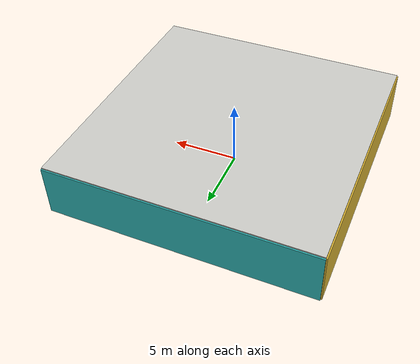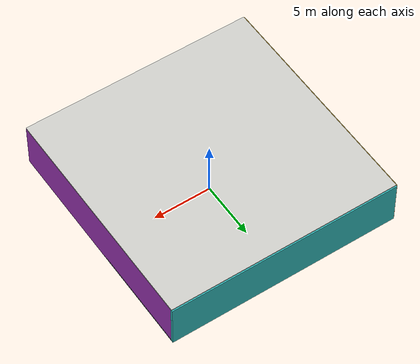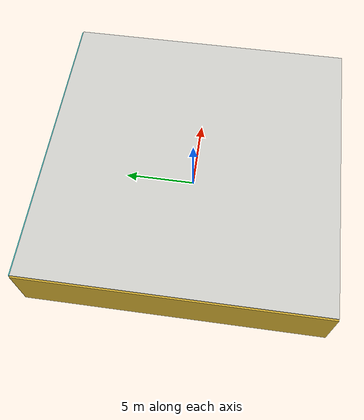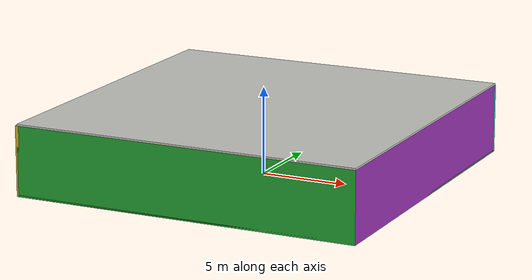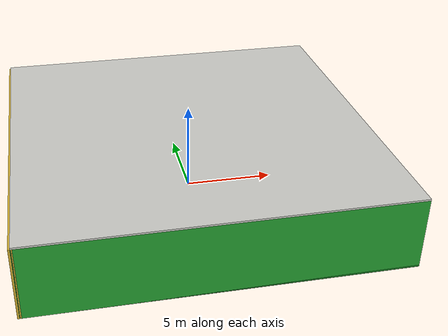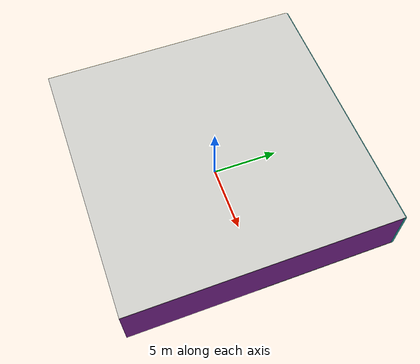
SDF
<sdf version="1.4">
 <world name="default">
  <physics type="ode">
   <max_step_size>0.001</max_step_size>
   <real_time_factor>1</real_time_factor>
   <real_time_update_rate>1000</real_time_update_rate>
   <gravity>0 0 -9.8</gravity>
  </physics>
  <scene><ambient>0.4 0.4 0.4 1</ambient><background>0.7 0.7 0.7 1</background><shadows>1</shadows></scene>
  <model name="Surrounding">
   <static>1</static>
   <link name="Ceiling">
    <collision name="Ceiling_Collision"><geometry><box><size>20 20 0.1</size></box></geometry></collision>
    <visual name="Ceiling_Visual">
     <geometry><box><size>20 20 0.1</size></box></geometry>
     <material>
      <script><uri>file://media/materials/scripts/gazebo.material</uri><name>Gazebo/CeilingTiled</name></script>
     </material>
    </visual>
    <pose>0 0 4.05 0 0 0</pose>
   </link>
   <link name="Wall_South">
    <collision name="Wall_South_Collision">
     <geometry><box><size>20 0 4</size></box></geometry>
     <pose>0 0 2 0 -0 0</pose>
    </collision>
    <visual name="Wall_South_Visual">
     <pose>0 0 2 0 -0 0</pose>
     <geometry><box><size>20 0 4</size></box></geometry>
     <material>
      <script><uri>file://media/materials/scripts/gazebo.material</uri><name>Gazebo/Green</name></script>
     </material>
    </visual>
    <velocity_decay><linear>0</linear><angular>0</angular></velocity_decay>
    <pose>0 -10 0 0 -0 0</pose>
   </link>
   <link name="Wall_East">
    <collision name="Wall_21_Collision">
     <geometry><box><size>20 0 4</size></box></geometry>
     <pose>0 0 2 0 -0 0</pose>
    </collision>
    <visual name="Wall_21_Visual">
     <pose>0 0 2 0 -0 0</pose>
     <geometry><box><size>20 0 4</size></box></geometry>
     <material>
      <script><uri>file://media/materials/scripts/gazebo.material</uri><name>Gazebo/PurpleGlow</name></script>
     </material>
    </visual>
    <velocity_decay><linear>0</linear><angular>0</angular></velocity_decay>
    <pose>10 0 0 0 -0 1.5708</pose>
   </link>
   <link name="Wall_North">
    <collision name="Wall_22_Collision">
     <geometry><box><size>20 0.2 4</size></box></geometry>
     <pose>0 0 2 0 -0 0</pose>
    </collision>
    <visual name="Wall_22_Visual">
     <pose>0 0 2 0 -0 0</pose>
     <geometry><box><size>20 0.2 4</size></box></geometry>
     <material>
      <script><uri>file://media/materials/scripts/gazebo.material</uri><name>Gazebo/Turquoise</name></script>
     </material>
    </visual>
    <velocity_decay><linear>0</linear><angular>0</angular></velocity_decay>
    <pose>0 10 0 0 -0 0</pose>
   </link>
   <link name="Wall_West">
    <collision name="Wall_23_Collision">
     <geometry><box><size>20 0.2 4</size></box></geometry>
     <pose>0 0 2 0 -0 0</pose>
    </collision>
    <visual name="Wall_23_Visual">
     <pose>0 0 2 0 -0 0</pose>
     <geometry><box><size>20 0.2 4</size></box></geometry>
     <material>
      <script><uri>file://media/materials/scripts/gazebo.material</uri><name>Gazebo/Gold</name></script>
     </material>
    </visual>
    <velocity_decay><linear>0</linear><angular>0</angular></velocity_decay>
    <pose>-10 0 0 0 0 -1.5708</pose>
   </link>
   <link name="Ground_link">
    <collision name="collision">
     <pose>0 0 .05 0 -0 0</pose>
     <geometry><box><size>20 20 0.1</size></box></geometry>
    </collision>
    <visual name="visual">
     <pose>0 0 .05 0 -0 0</pose>
     <geometry><box><size>20 20 0.1</size></box></geometry>
     <material>
      <script><uri>file://media/materials/scripts/gazebo.material</uri><name>Gazebo/GreenTransparent</name></script>
     </material>
    </visual>
   </link>
   <static>1</static>
  </model>
  <spherical_coordinates>
   <surface_model>EARTH_WGS84</surface_model>
   <latitude_deg>0</latitude_deg>
   <longitude_deg>0</longitude_deg>
   <elevation>0</elevation>
   <heading_deg>0</heading_deg>
  </spherical_coordinates>
  <light name="lightball_0" type="diffuse">
   <diffuse>0.8 0.8 0.8 1</diffuse>
   <specular>0.2 0.2 0.2 1</specular>
   <attenuation>
    <range>100</range>
    <constant>0.7</constant>
    <linear>0.01</linear>
    <quadratic>0.001</quadratic>
   </attenuation>
   <direction>-0.5 0.1 -0.9</direction>
   <pose>-7.92245155324 -6.21518979153 1.67043725466 0 0 0</pose>
  </light>
  <light name="lightball_1" type="diffuse">
   <diffuse>0.8 0.8 0.8 1</diffuse>
   <specular>0.2 0.2 0.2 1</specular>
   <attenuation>
    <range>100</range>
    <constant>0.7</constant>
    <linear>0.01</linear>
    <quadratic>0.001</quadratic>
   </attenuation>
   <direction>-0.5 0.1 -0.9</direction>
   <pose>-8.83494681822 -3.10747300883 2.67382794964 0 0 0</pose>
  </light>
  <light name="lightball_2" type="diffuse">
   <diffuse>0.8 0.8 0.8 1</diffuse>
   <specular>0.2 0.2 0.2 1</specular>
   <attenuation>
    <range>100</range>
    <constant>0.7</constant>
    <linear>0.01</linear>
    <quadratic>0.001</quadratic>
   </attenuation>
   <direction>-0.5 0.1 -0.9</direction>
   <pose>-3.17809601457 -9.38663240978 2.57413864824 0 0 0</pose>
  </light>
  <light name="lightball_3" type="diffuse">
   <diffuse>0.8 0.8 0.8 1</diffuse>
   <specular>0.2 0.2 0.2 1</specular>
   <attenuation>
    <range>100</range>
    <constant>0.7</constant>
    <linear>0.01</linear>
    <quadratic>0.001</quadratic>
   </attenuation>
   <direction>-0.5 0.1 -0.9</direction>
   <pose>-5.0875017085 2.35372681961 1.19032764418 0 0 0</pose>
  </light>
  <light name="lightball_4" type="diffuse">
   <diffuse>0.8 0.8 0.8 1</diffuse>
   <specular>0.2 0.2 0.2 1</specular>
   <attenuation>
    <range>100</range>
    <constant>0.7</constant>
    <linear>0.01</linear>
    <quadratic>0.001</quadratic>
   </attenuation>
   <direction>-0.5 0.1 -0.9</direction>
   <pose>7.7909916207 -4.48199671088 2.59666696912 0 0 0</pose>
  </light>
  <light name="lightball_5" type="diffuse">
   <diffuse>0.8 0.8 0.8 1</diffuse>
   <specular>0.2 0.2 0.2 1</specular>
   <attenuation>
    <range>100</range>
    <constant>0.7</constant>
    <linear>0.01</linear>
    <quadratic>0.001</quadratic>
   </attenuation>
   <direction>-0.5 0.1 -0.9</direction>
   <pose>-2.0371071333 -4.96806895508 0.585837042278 0 0 0</pose>
  </light>
  <light name="lightball_6" type="diffuse">
   <diffuse>0.8 0.8 0.8 1</diffuse>
   <specular>0.2 0.2 0.2 1</specular>
   <attenuation>
    <range>100</range>
    <constant>0.7</constant>
    <linear>0.01</linear>
    <quadratic>0.001</quadratic>
   </attenuation>
   <direction>-0.5 0.1 -0.9</direction>
   <pose>5.82163842417 -2.15689047615 3.69954522512 0 0 0</pose>
  </light>
  <light name="lightball_7" type="diffuse">
   <diffuse>0.8 0.8 0.8 1</diffuse>
   <specular>0.2 0.2 0.2 1</specular>
   <attenuation>
    <range>100</range>
    <constant>0.7</constant>
    <linear>0.01</linear>
    <quadratic>0.001</quadratic>
   </attenuation>
   <direction>-0.5 0.1 -0.9</direction>
   <pose>-6.19736984934 7.68832823657 2.10887760305 0 0 0</pose>
  </light>
  <light name="lightball_8" type="diffuse">
   <diffuse>0.8 0.8 0.8 1</diffuse>
   <specular>0.2 0.2 0.2 1</specular>
   <attenuation>
    <range>100</range>
    <constant>0.7</constant>
    <linear>0.01</linear>
    <quadratic>0.001</quadratic>
   </attenuation>
   <direction>-0.5 0.1 -0.9</direction>
   <pose>4.26082237046 7.85271557876 1.31588496175 0 0 0</pose>
  </light>
  <light name="lightball_9" type="diffuse">
   <diffuse>0.8 0.8 0.8 1</diffuse>
   <specular>0.2 0.2 0.2 1</specular>
   <attenuation>
    <range>100</range>
    <constant>0.7</constant>
    <linear>0.01</linear>
    <quadratic>0.001</quadratic>
   </attenuation>
   <direction>-0.5 0.1 -0.9</direction>
   <pose>-6.50989580829 -2.40682719982 3.47558615421 0 0 0</pose>
  </light>
  <light name="lightball_10" type="diffuse">
   <diffuse>0.8 0.8 0.8 1</diffuse>
   <specular>0.2 0.2 0.2 1</specular>
   <attenuation>
    <range>100</range>
    <constant>0.7</constant>
    <linear>0.01</linear>
    <quadratic>0.001</quadratic>
   </attenuation>
   <direction>-0.5 0.1 -0.9</direction>
   <pose>-6.21443452892 -6.72973098324 3.46558923055 0 0 0</pose>
  </light>
  <light name="lightball_11" type="diffuse">
   <diffuse>0.8 0.8 0.8 1</diffuse>
   <specular>0.2 0.2 0.2 1</specular>
   <attenuation>
    <range>100</range>
    <constant>0.7</constant>
    <linear>0.01</linear>
    <quadratic>0.001</quadratic>
   </attenuation>
   <direction>-0.5 0.1 -0.9</direction>
   <pose>-1.36425873967 0.81923576248 2.94695452986 0 0 0</pose>
  </light>
  <include><uri>model://cabinet</uri><pose>-4.41983242802 8.09920832859 0 0 0 1.57350481404</pose></include>
  <include><uri>model://cabinet</uri><pose>1.12909677198 -2.61041644566 0 0 0 1.63609942351</pose></include>
  <include>
   <uri>model://robocup_3Dsim_goal</uri>
   <pose>4.64598751817 -8.21410938522 0 0 0 0.923073956733</pose>
  </include>
  <include><uri>model://cabinet</uri><pose>7.72228452073 -7.2199400699 0 0 0 2.505749802</pose></include>
  <include><uri>model://cabinet</uri><pose>7.96904295235 7.61488862773 0 0 0 2.55797823251</pose></include>
 </world>
</sdf>

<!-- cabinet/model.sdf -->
<sdf version="1.5">
  <model name="cabinet">
    <static>true</static>
    <link name="cabinet_bottom_plate">
      <inertial>
        <pose>0 0 -1 0 0 0</pose>
        <inertia>
          <ixx>2.050000</ixx>
          <ixy>0</ixy>
          <ixz>0</ixz>
          <iyy>2.050000</iyy>
          <iyz>0</iyz>
          <izz>2.050000</izz>
        </inertia>
        <mass>25.000000</mass>
      </inertial>
      <collision name="cabinet_bottom_plate_geom">
        <pose>0 0 0.010000 0 0 0</pose>
        <geometry>
          <box>
            <size>0.450000 0.450000 0.020000</size>
          </box>
        </geometry>
      </collision>
      <visual name="cabinet_bottom_plate_geom_visual">
        <pose>0 0 0.010000 0 0 0</pose>
        <geometry>
          <box>
            <size>0.450000 0.450000 0.020000</size>
          </box>
        </geometry>
        <material>
          <script>
            <uri>model://media/materials/scripts/gazebo.material</uri>
            <name>Gazebo/Wood</name>
          </script>
        </material>
      </visual>
      <collision name="cabinet_bottom_plate_geom_cabinet_back_plate">
        <pose>0.235000 0 0.510000 0 0 0</pose>
        <geometry>
          <box>
            <size>0.020000 0.450000 1.020000</size>
          </box>
        </geometry>
      </collision>
      <visual name="cabinet_bottom_plate_geom_cabinet_back_plate_visual">
        <pose>0.235000 0 0.510000 0 0 0</pose>
        <geometry>
          <box>
            <size>0.020000 0.450000 1.020000</size>
          </box>
        </geometry>
        <material>
          <script>
            <uri>model://media/materials/scripts/gazebo.material</uri>
            <name>Gazebo/Wood</name>
          </script>
        </material>
      </visual>
      <collision name="cabinet_bottom_plate_geom_cabinet_left_plate">
        <pose>0 0.235000 0.510000 0 0 0</pose>
        <geometry>
          <box>
            <size>0.450000 0.020000 1.020000</size>
          </box>
        </geometry>
      </collision>
      <visual name="cabinet_bottom_plate_geom_cabinet_left_plate_visual">
        <pose>0 0.235000 0.510000 0 0 0</pose>
        <geometry>
          <box>
            <size>0.450000 0.020000 1.020000</size>
          </box>
        </geometry>
        <material>
          <script>
            <uri>model://media/materials/scripts/gazebo.material</uri>
            <name>Gazebo/Wood</name>
          </script>
        </material>
      </visual>
      <collision name="cabinet_bottom_plate_geom_cabinet_middle_plate">
        <pose>0 0 0.510000 0 0 0</pose>
        <geometry>
          <box>
            <size>0.450000 0.450000 0.020000</size>
          </box>
        </geometry>
      </collision>
      <visual name="cabinet_bottom_plate_geom_cabinet_middle_plate_visual">
        <pose>0 0 0.510000 0 0 0</pose>
        <geometry>
          <box>
            <size>0.450000 0.450000 0.020000</size>
          </box>
        </geometry>
        <material>
          <script>
            <uri>model://media/materials/scripts/gazebo.material</uri>
            <name>Gazebo/Wood</name>
          </script>
        </material>
      </visual>
      <collision name="cabinet_bottom_plate_geom_cabinet_right_plate">
        <pose>0 -0.235000 0.510000 0 0 0</pose>
        <geometry>
          <box>
            <size>0.450000 0.020000 1.020000</size>
          </box>
        </geometry>
      </collision>
      <visual name="cabinet_bottom_plate_geom_cabinet_right_plate_visual">
        <pose>0 -0.235000 0.510000 0 0 0</pose>
        <geometry>
          <box>
            <size>0.450000 0.020000 1.020000</size>
          </box>
        </geometry>
        <material>
          <script>
            <uri>model://media/materials/scripts/gazebo.material</uri>
            <name>Gazebo/Wood</name>
          </script>
        </material>
      </visual>
      <collision name="cabinet_bottom_plate_geom_cabinet_top_plate">
        <pose>0 0 1.010000 0 0 0</pose>
        <geometry>
          <box>
            <size>0.450000 0.450000 0.020000</size>
          </box>
        </geometry>
      </collision>
      <visual name="cabinet_bottom_plate_geom_cabinet_top_plate_visual">
        <pose>0 0 1.010000 0 0 0</pose>
        <geometry>
          <box>
            <size>0.450000 0.450000 0.020000</size>
          </box>
        </geometry>
        <material>
          <script>
            <uri>model://media/materials/scripts/gazebo.material</uri>
            <name>Gazebo/Wood</name>
          </script>
        </material>
      </visual>
    </link>
  </model>
</sdf>

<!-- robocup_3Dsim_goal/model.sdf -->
<sdf version="1.5">
  <model name="robocup_3d_goal">
    <static>true</static>
    <link name="left_post">
      <pose>0 1.05 0.45 0 0 0</pose>
      <collision name="collision">
        <geometry>
          <cylinder>
            <radius>0.05</radius>
            <length>0.9</length>
          </cylinder>
        </geometry>
      </collision>
      <visual name="visual">
        <geometry>
          <cylinder>
            <radius>0.05</radius>
            <length>0.9</length>
          </cylinder>
        </geometry>
        <material>
          <script>
            <uri>file://media/materials/scripts/gazebo.material</uri>
            <name>Gazebo/ZincYellow</name>
          </script>
        </material>
      </visual>
    </link>
    <link name="left_support_horiz_lower">
      <pose>0.30 1.05 0.01 0 0 0</pose>
      <collision name="collision">
        <geometry>
          <box>
            <size>0.50 0.02 0.02</size>
          </box>
        </geometry>
      </collision>
      <visual name="visual">
        <geometry>
          <box>
            <size>0.50 0.02 0.02</size>
          </box>
        </geometry>
        <material>
          <script>
            <uri>file://media/materials/scripts/gazebo.material</uri>
            <name>Gazebo/White</name>
          </script>
        </material>
      </visual>
    </link>
    <link name="left_support_horiz_upper">
      <pose>0.30 1.05 0.79 0 0 0</pose>
      <collision name="collision">
        <geometry>
          <box>
            <size>0.50 0.02 0.02</size>
          </box>
        </geometry>
      </collision>
      <visual name="visual">
        <geometry>
          <box>
            <size>0.50 0.02 0.02</size>
          </box>
        </geometry>
        <material>
          <script>
            <uri>file://media/materials/scripts/gazebo.material</uri>
            <name>Gazebo/White</name>
          </script>
        </material>
      </visual>
    </link>
    <link name="left_support_vertical">
      <pose>0.56 1.05 0.4 0 1.5708 0</pose>
      <collision name="collision">
        <geometry>
          <box>
            <size>0.80 0.02 0.02</size>
          </box>
        </geometry>
      </collision>
      <visual name="visual">
        <geometry>
          <box>
            <size>0.80 0.02 0.02</size>
          </box>
        </geometry>
        <material>
          <script>
            <uri>file://media/materials/scripts/gazebo.material</uri>
            <name>Gazebo/White</name>
          </script>
        </material>
      </visual>
    </link>
    <link name="right_support_horiz_lower">
      <pose>0.30 -1.05 0.01 0 0 0</pose>
      <collision name="collision">
        <geometry>
          <box>
            <size>0.50 0.02 0.02</size>
          </box>
        </geometry>
      </collision>
      <visual name="visual">
        <geometry>
          <box>
            <size>0.50 0.02 0.02</size>
          </box>
        </geometry>
        <material>
          <script>
            <uri>file://media/materials/scripts/gazebo.material</uri>
            <name>Gazebo/White</name>
          </script>
        </material>
      </visual>
    </link>
    <link name="right_support_horiz_upper">
      <pose>0.30 -1.05 0.79 0 0 0</pose>
      <collision name="collision">
        <geometry>
          <box>
            <size>0.50 0.02 0.02</size>
          </box>
        </geometry>
      </collision>
      <visual name="visual">
        <geometry>
          <box>
            <size>0.50 0.02 0.02</size>
          </box>
        </geometry>
        <material>
          <script>
            <uri>file://media/materials/scripts/gazebo.material</uri>
            <name>Gazebo/White</name>
          </script>
        </material>
      </visual>
    </link>
    <link name="right_support_vertical">
      <pose>0.56 -1.05 0.4 0 1.5708 0</pose>
      <collision name="collision">
        <geometry>
          <box>
            <size>0.80 0.02 0.02</size>
          </box>
        </geometry>
      </collision>
      <visual name="visual">
        <geometry>
          <box>
            <size>0.80 0.02 0.02</size>
          </box>
        </geometry>
        <material>
          <script>
            <uri>file://media/materials/scripts/gazebo.material</uri>
            <name>Gazebo/White</name>
          </script>
        </material>
      </visual>
    </link>
    <link name="center_support_horiz_lower">
      <pose>0.56 0 0.01 0 1.5708 0</pose>
      <collision name="collision">
        <geometry>
          <box>
            <size>0.02 2.08 0.02</size>
          </box>
        </geometry>
      </collision>
      <visual name="visual">
        <geometry>
          <box>
            <size>0.02 2.08 0.02</size>
          </box>
        </geometry>
        <material>
          <script>
            <uri>file://media/materials/scripts/gazebo.material</uri>
            <name>Gazebo/White</name>
          </script>
        </material>
      </visual>
    </link>
    <link name="center_support_horiz_upper">
      <pose>0.56 0 0.79 0 1.5708 0</pose>
      <collision name="collision">
        <geometry>
          <box>
            <size>0.02 2.08 0.02</size>
          </box>
        </geometry>
      </collision>
      <visual name="visual">
        <geometry>
          <box>
            <size>0.02 2.08 0.02</size>
          </box>
        </geometry>
        <material>
          <script>
            <uri>file://media/materials/scripts/gazebo.material</uri>
            <name>Gazebo/White</name>
          </script>
        </material>
      </visual>
    </link>
    <link name="right_post">
      <pose>0 -1.05 0.45 0 0 0</pose>
      <collision name="collision">
        <geometry>
          <cylinder>
            <radius>0.05</radius>
            <length>0.9</length>
          </cylinder>
        </geometry>
      </collision>
      <visual name="visual">
        <geometry>
          <cylinder>
            <radius>0.05</radius>
            <length>0.9</length>
          </cylinder>
        </geometry>
        <material>
          <script>
            <uri>file://media/materials/scripts/gazebo.material</uri>
            <name>Gazebo/ZincYellow</name>
          </script>
        </material>
      </visual>
    </link>
    <link name="crossbar">
      <pose>0 0 0.85 1.57 1.57 0</pose>
      <collision name="collision">
        <geometry>
          <cylinder>
            <radius>0.05</radius>
            <length>2.0</length>
          </cylinder>
        </geometry>
      </collision>
      <visual name="visual">
        <geometry>
          <cylinder>
            <radius>0.05</radius>
            <length>2.0</length>
          </cylinder>
        </geometry>
        <material>
          <script>
            <uri>file://media/materials/scripts/gazebo.material</uri>
            <name>Gazebo/ZincYellow</name>
          </script>
        </material>
      </visual>
    </link>
    <link name="center_net">
      <pose>0.56 0 0.40 0 0 0</pose>
      <collision name="collision">
        <geometry>
          <box>
            <size>0.01 2.1 0.80</size>
          </box>
        </geometry>
      </collision>
      <visual name="visual">
        <geometry>
          <box>
            <size>0.01 2.1 0.80</size>
          </box>
        </geometry>
        <material>
          <script>
            <uri>model://../model_source/models/robocup09_spl_field/materials/scripts/</uri>
            <uri>model://../model_source/models/robocup09_spl_field/materials/textures/</uri>
            <name>RoboCup/Net</name>
          </script>
        </material>
      </visual>
    </link>
    <link name="left_net">
      <pose>0.30 1.05 0.40 0 0 0</pose>
      <collision name="collision">
        <geometry>
          <box>
            <size>0.50 0.01 0.76</size>
          </box>
        </geometry>
      </collision>
      <visual name="visual">
        <geometry>
          <box>
            <size>0.50 0.01 0.76</size>
          </box>
        </geometry>
        <material>
          <script>
            <uri>model://../model_source/models/robocup09_spl_field/materials/scripts/</uri>
            <uri>model://../model_source/models/robocup09_spl_field/materials/textures/</uri>
            <name>RoboCup/Net</name>
          </script>
        </material>
      </visual>
    </link>
    <link name="right_net">
      <pose>0.30 -1.05 0.40 0 0 0</pose>
      <collision name="collision">
        <geometry>
          <box>
            <size>0.50 0.01 0.76</size>
          </box>
        </geometry>
      </collision>
      <visual name="visual">
        <geometry>
          <box>
            <size>0.50 0.01 0.76</size>
          </box>
        </geometry>
        <material>
          <script>
            <uri>model://../model_source/models/robocup09_spl_field/materials/scripts/</uri>
            <uri>model://../model_source/models/robocup09_spl_field/materials/textures/</uri>
            <name>RoboCup/Net</name>
          </script>
        </material>
      </visual>
    </link>
  </model>
</sdf>
